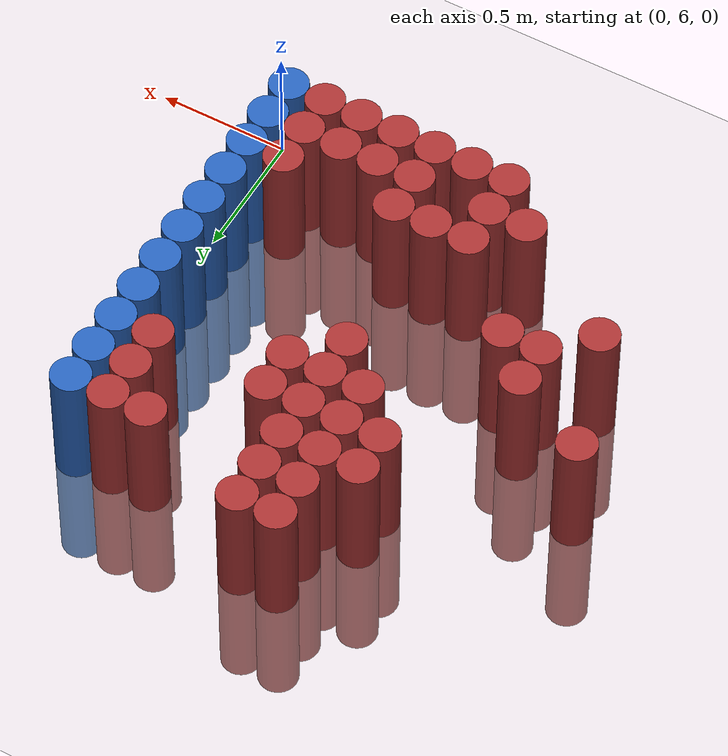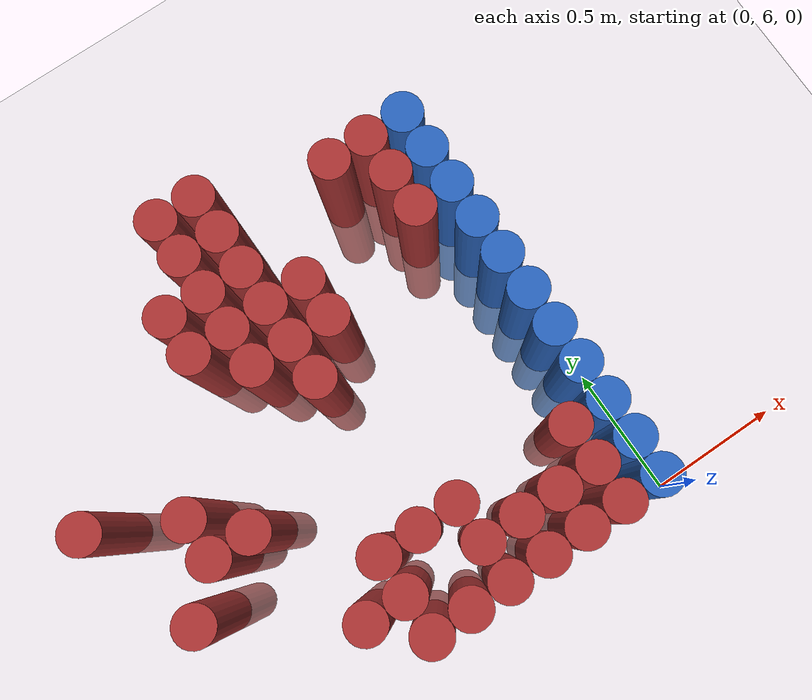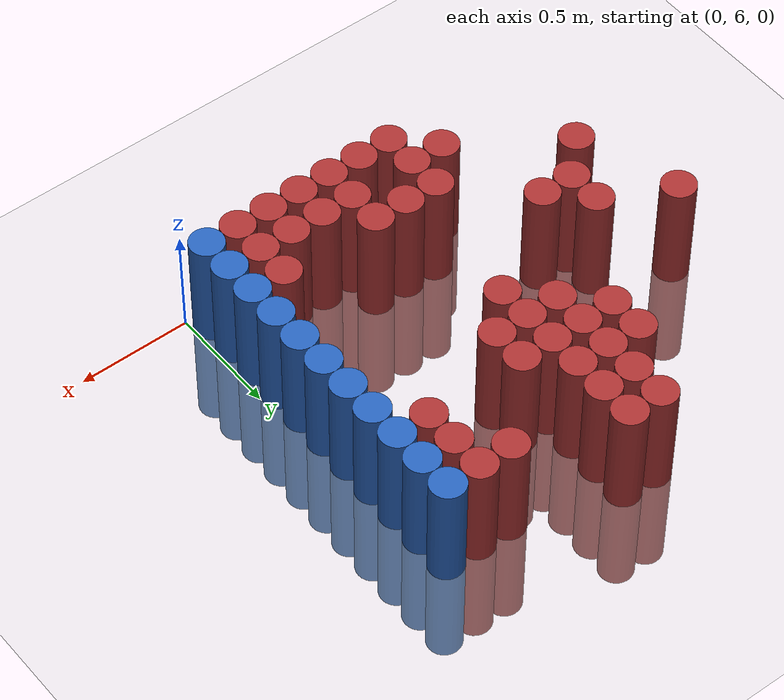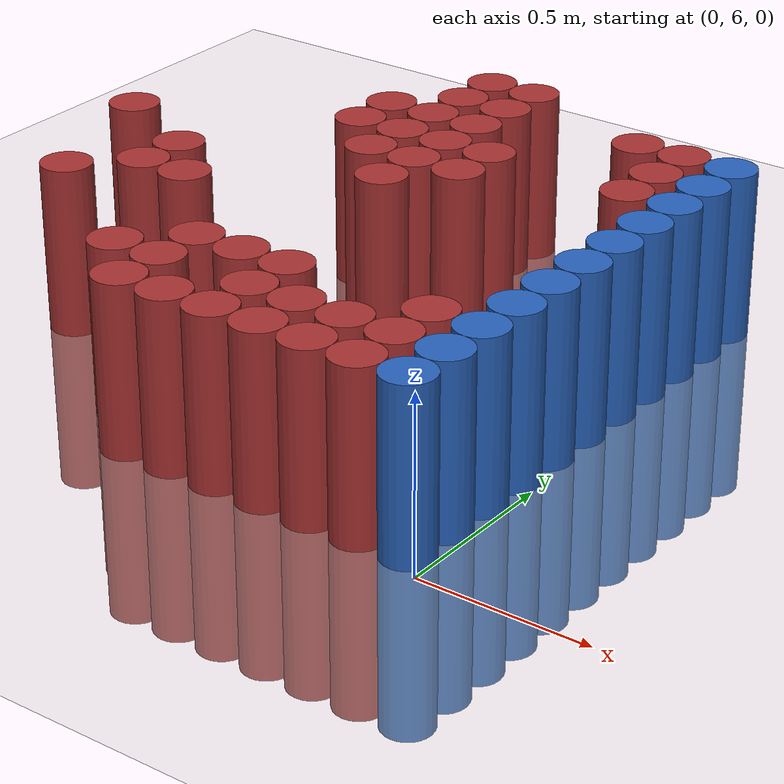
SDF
<sdf version="1.6">
 <world name="default">
  <model name="ground_plane">
   <static>1</static>
   <link name="link">
    <collision name="collision">
     <geometry><plane><normal>0 0 1</normal><size>100 100</size></plane></geometry>
     <surface><friction><ode><mu>100</mu><mu2>50</mu2></ode></friction></surface>
    </collision>
    <visual name="visual">
     <cast_shadows>0</cast_shadows>
     <geometry><plane><normal>0 0 1</normal><size>100 100</size></plane></geometry>
     <material>
      <script><uri>file://media/materials/scripts/gazebo.material</uri><name>Gazebo/Grey</name></script>
     </material>
    </visual>
   </link>
  </model>
  <model name="unit_cylinder_239">
   <static>1</static>
   <pose>-1.725000 6.975000 0.000000 0.000000 0.000000 0.000000</pose>
   <link name="link">
    <inertial>
     <mass>1</mass>
     <inertia><ixx>0.145833</ixx><ixy>0</ixy><ixz>0</ixz><iyy>0.145833</iyy><iyz>0</iyz><izz>0.125</izz></inertia>
    </inertial>
    <collision name="collision">
     <geometry><cylinder><radius>0.075000</radius><length>1</length></cylinder></geometry>
    </collision>
    <visual name="visual">
     <geometry><cylinder><radius>0.075000</radius><length>1</length></cylinder></geometry>
     <material>
      <ambient>0.648000 0.192000 0.192000 1</ambient>
      <diffuse>0.648000 0.192000 0.192000 1</diffuse>
     </material>
     <material>
      <script><name>Gazebo/Grey</name><uri>file://media/materials/scripts/gazebo.material</uri></script>
     </material>
    </visual>
   </link>
  </model>
  <model name="unit_cylinder_245">
   <static>1</static>
   <pose>-1.575000 6.525000 0.000000 0.000000 0.000000 0.000000</pose>
   <link name="link">
    <inertial>
     <mass>1</mass>
     <inertia><ixx>0.145833</ixx><ixy>0</ixy><ixz>0</ixz><iyy>0.145833</iyy><iyz>0</iyz><izz>0.125</izz></inertia>
    </inertial>
    <collision name="collision">
     <geometry><cylinder><radius>0.075000</radius><length>1</length></cylinder></geometry>
    </collision>
    <visual name="visual">
     <geometry><cylinder><radius>0.075000</radius><length>1</length></cylinder></geometry>
     <material>
      <ambient>0.648000 0.192000 0.192000 1</ambient>
      <diffuse>0.648000 0.192000 0.192000 1</diffuse>
     </material>
     <material>
      <script><name>Gazebo/Grey</name><uri>file://media/materials/scripts/gazebo.material</uri></script>
     </material>
    </visual>
   </link>
  </model>
  <model name="unit_cylinder_250">
   <static>1</static>
   <pose>-1.425000 6.675000 0.000000 0.000000 0.000000 0.000000</pose>
   <link name="link">
    <inertial>
     <mass>1</mass>
     <inertia><ixx>0.145833</ixx><ixy>0</ixy><ixz>0</ixz><iyy>0.145833</iyy><iyz>0</iyz><izz>0.125</izz></inertia>
    </inertial>
    <collision name="collision">
     <geometry><cylinder><radius>0.075000</radius><length>1</length></cylinder></geometry>
    </collision>
    <visual name="visual">
     <geometry><cylinder><radius>0.075000</radius><length>1</length></cylinder></geometry>
     <material>
      <ambient>0.648000 0.192000 0.192000 1</ambient>
      <diffuse>0.648000 0.192000 0.192000 1</diffuse>
     </material>
     <material>
      <script><name>Gazebo/Grey</name><uri>file://media/materials/scripts/gazebo.material</uri></script>
     </material>
    </visual>
   </link>
  </model>
  <model name="unit_cylinder_251">
   <static>1</static>
   <pose>-1.425000 6.825000 0.000000 0.000000 0.000000 0.000000</pose>
   <link name="link">
    <inertial>
     <mass>1</mass>
     <inertia><ixx>0.145833</ixx><ixy>0</ixy><ixz>0</ixz><iyy>0.145833</iyy><iyz>0</iyz><izz>0.125</izz></inertia>
    </inertial>
    <collision name="collision">
     <geometry><cylinder><radius>0.075000</radius><length>1</length></cylinder></geometry>
    </collision>
    <visual name="visual">
     <geometry><cylinder><radius>0.075000</radius><length>1</length></cylinder></geometry>
     <material>
      <ambient>0.648000 0.192000 0.192000 1</ambient>
      <diffuse>0.648000 0.192000 0.192000 1</diffuse>
     </material>
     <material>
      <script><name>Gazebo/Grey</name><uri>file://media/materials/scripts/gazebo.material</uri></script>
     </material>
    </visual>
   </link>
  </model>
  <model name="unit_cylinder_255">
   <static>1</static>
   <pose>-1.275000 6.675000 0.000000 0.000000 0.000000 0.000000</pose>
   <link name="link">
    <inertial>
     <mass>1</mass>
     <inertia><ixx>0.145833</ixx><ixy>0</ixy><ixz>0</ixz><iyy>0.145833</iyy><iyz>0</iyz><izz>0.125</izz></inertia>
    </inertial>
    <collision name="collision">
     <geometry><cylinder><radius>0.075000</radius><length>1</length></cylinder></geometry>
    </collision>
    <visual name="visual">
     <geometry><cylinder><radius>0.075000</radius><length>1</length></cylinder></geometry>
     <material>
      <ambient>0.648000 0.192000 0.192000 1</ambient>
      <diffuse>0.648000 0.192000 0.192000 1</diffuse>
     </material>
     <material>
      <script><name>Gazebo/Grey</name><uri>file://media/materials/scripts/gazebo.material</uri></script>
     </material>
    </visual>
   </link>
  </model>
  <model name="unit_cylinder_261">
   <static>1</static>
   <pose>-1.125000 6.225000 0.000000 0.000000 0.000000 0.000000</pose>
   <link name="link">
    <inertial>
     <mass>1</mass>
     <inertia><ixx>0.145833</ixx><ixy>0</ixy><ixz>0</ixz><iyy>0.145833</iyy><iyz>0</iyz><izz>0.125</izz></inertia>
    </inertial>
    <collision name="collision">
     <geometry><cylinder><radius>0.075000</radius><length>1</length></cylinder></geometry>
    </collision>
    <visual name="visual">
     <geometry><cylinder><radius>0.075000</radius><length>1</length></cylinder></geometry>
     <material>
      <ambient>0.648000 0.192000 0.192000 1</ambient>
      <diffuse>0.648000 0.192000 0.192000 1</diffuse>
     </material>
     <material>
      <script><name>Gazebo/Grey</name><uri>file://media/materials/scripts/gazebo.material</uri></script>
     </material>
    </visual>
   </link>
  </model>
  <model name="unit_cylinder_262">
   <static>1</static>
   <pose>-1.125000 7.275000 0.000000 0.000000 0.000000 0.000000</pose>
   <link name="link">
    <inertial>
     <mass>1</mass>
     <inertia><ixx>0.145833</ixx><ixy>0</ixy><ixz>0</ixz><iyy>0.145833</iyy><iyz>0</iyz><izz>0.125</izz></inertia>
    </inertial>
    <collision name="collision">
     <geometry><cylinder><radius>0.075000</radius><length>1</length></cylinder></geometry>
    </collision>
    <visual name="visual">
     <geometry><cylinder><radius>0.075000</radius><length>1</length></cylinder></geometry>
     <material>
      <ambient>0.648000 0.192000 0.192000 1</ambient>
      <diffuse>0.648000 0.192000 0.192000 1</diffuse>
     </material>
     <material>
      <script><name>Gazebo/Grey</name><uri>file://media/materials/scripts/gazebo.material</uri></script>
     </material>
    </visual>
   </link>
  </model>
  <model name="unit_cylinder_263">
   <static>1</static>
   <pose>-1.125000 7.425000 0.000000 0.000000 0.000000 0.000000</pose>
   <link name="link">
    <inertial>
     <mass>1</mass>
     <inertia><ixx>0.145833</ixx><ixy>0</ixy><ixz>0</ixz><iyy>0.145833</iyy><iyz>0</iyz><izz>0.125</izz></inertia>
    </inertial>
    <collision name="collision">
     <geometry><cylinder><radius>0.075000</radius><length>1</length></cylinder></geometry>
    </collision>
    <visual name="visual">
     <geometry><cylinder><radius>0.075000</radius><length>1</length></cylinder></geometry>
     <material>
      <ambient>0.648000 0.192000 0.192000 1</ambient>
      <diffuse>0.648000 0.192000 0.192000 1</diffuse>
     </material>
     <material>
      <script><name>Gazebo/Grey</name><uri>file://media/materials/scripts/gazebo.material</uri></script>
     </material>
    </visual>
   </link>
  </model>
  <model name="unit_cylinder_266">
   <static>1</static>
   <pose>-0.975000 6.075000 0.000000 0.000000 0.000000 0.000000</pose>
   <link name="link">
    <inertial>
     <mass>1</mass>
     <inertia><ixx>0.145833</ixx><ixy>0</ixy><ixz>0</ixz><iyy>0.145833</iyy><iyz>0</iyz><izz>0.125</izz></inertia>
    </inertial>
    <collision name="collision">
     <geometry><cylinder><radius>0.075000</radius><length>1</length></cylinder></geometry>
    </collision>
    <visual name="visual">
     <geometry><cylinder><radius>0.075000</radius><length>1</length></cylinder></geometry>
     <material>
      <ambient>0.648000 0.192000 0.192000 1</ambient>
      <diffuse>0.648000 0.192000 0.192000 1</diffuse>
     </material>
     <material>
      <script><name>Gazebo/Grey</name><uri>file://media/materials/scripts/gazebo.material</uri></script>
     </material>
    </visual>
   </link>
  </model>
  <model name="unit_cylinder_267">
   <static>1</static>
   <pose>-0.975000 6.225000 0.000000 0.000000 0.000000 0.000000</pose>
   <link name="link">
    <inertial>
     <mass>1</mass>
     <inertia><ixx>0.145833</ixx><ixy>0</ixy><ixz>0</ixz><iyy>0.145833</iyy><iyz>0</iyz><izz>0.125</izz></inertia>
    </inertial>
    <collision name="collision">
     <geometry><cylinder><radius>0.075000</radius><length>1</length></cylinder></geometry>
    </collision>
    <visual name="visual">
     <geometry><cylinder><radius>0.075000</radius><length>1</length></cylinder></geometry>
     <material>
      <ambient>0.648000 0.192000 0.192000 1</ambient>
      <diffuse>0.648000 0.192000 0.192000 1</diffuse>
     </material>
     <material>
      <script><name>Gazebo/Grey</name><uri>file://media/materials/scripts/gazebo.material</uri></script>
     </material>
    </visual>
   </link>
  </model>
  <model name="unit_cylinder_268">
   <static>1</static>
   <pose>-0.975000 6.375000 0.000000 0.000000 0.000000 0.000000</pose>
   <link name="link">
    <inertial>
     <mass>1</mass>
     <inertia><ixx>0.145833</ixx><ixy>0</ixy><ixz>0</ixz><iyy>0.145833</iyy><iyz>0</iyz><izz>0.125</izz></inertia>
    </inertial>
    <collision name="collision">
     <geometry><cylinder><radius>0.075000</radius><length>1</length></cylinder></geometry>
    </collision>
    <visual name="visual">
     <geometry><cylinder><radius>0.075000</radius><length>1</length></cylinder></geometry>
     <material>
      <ambient>0.648000 0.192000 0.192000 1</ambient>
      <diffuse>0.648000 0.192000 0.192000 1</diffuse>
     </material>
     <material>
      <script><name>Gazebo/Grey</name><uri>file://media/materials/scripts/gazebo.material</uri></script>
     </material>
    </visual>
   </link>
  </model>
  <model name="unit_cylinder_269">
   <static>1</static>
   <pose>-0.975000 7.125000 0.000000 0.000000 0.000000 0.000000</pose>
   <link name="link">
    <inertial>
     <mass>1</mass>
     <inertia><ixx>0.145833</ixx><ixy>0</ixy><ixz>0</ixz><iyy>0.145833</iyy><iyz>0</iyz><izz>0.125</izz></inertia>
    </inertial>
    <collision name="collision">
     <geometry><cylinder><radius>0.075000</radius><length>1</length></cylinder></geometry>
    </collision>
    <visual name="visual">
     <geometry><cylinder><radius>0.075000</radius><length>1</length></cylinder></geometry>
     <material>
      <ambient>0.648000 0.192000 0.192000 1</ambient>
      <diffuse>0.648000 0.192000 0.192000 1</diffuse>
     </material>
     <material>
      <script><name>Gazebo/Grey</name><uri>file://media/materials/scripts/gazebo.material</uri></script>
     </material>
    </visual>
   </link>
  </model>
  <model name="unit_cylinder_270">
   <static>1</static>
   <pose>-0.975000 7.275000 0.000000 0.000000 0.000000 0.000000</pose>
   <link name="link">
    <inertial>
     <mass>1</mass>
     <inertia><ixx>0.145833</ixx><ixy>0</ixy><ixz>0</ixz><iyy>0.145833</iyy><iyz>0</iyz><izz>0.125</izz></inertia>
    </inertial>
    <collision name="collision">
     <geometry><cylinder><radius>0.075000</radius><length>1</length></cylinder></geometry>
    </collision>
    <visual name="visual">
     <geometry><cylinder><radius>0.075000</radius><length>1</length></cylinder></geometry>
     <material>
      <ambient>0.648000 0.192000 0.192000 1</ambient>
      <diffuse>0.648000 0.192000 0.192000 1</diffuse>
     </material>
     <material>
      <script><name>Gazebo/Grey</name><uri>file://media/materials/scripts/gazebo.material</uri></script>
     </material>
    </visual>
   </link>
  </model>
  <model name="unit_cylinder_271">
   <static>1</static>
   <pose>-0.975000 7.425000 0.000000 0.000000 0.000000 0.000000</pose>
   <link name="link">
    <inertial>
     <mass>1</mass>
     <inertia><ixx>0.145833</ixx><ixy>0</ixy><ixz>0</ixz><iyy>0.145833</iyy><iyz>0</iyz><izz>0.125</izz></inertia>
    </inertial>
    <collision name="collision">
     <geometry><cylinder><radius>0.075000</radius><length>1</length></cylinder></geometry>
    </collision>
    <visual name="visual">
     <geometry><cylinder><radius>0.075000</radius><length>1</length></cylinder></geometry>
     <material>
      <ambient>0.648000 0.192000 0.192000 1</ambient>
      <diffuse>0.648000 0.192000 0.192000 1</diffuse>
     </material>
     <material>
      <script><name>Gazebo/Grey</name><uri>file://media/materials/scripts/gazebo.material</uri></script>
     </material>
    </visual>
   </link>
  </model>
  <model name="unit_cylinder_272">
   <static>1</static>
   <pose>-0.975000 7.575000 0.000000 0.000000 0.000000 0.000000</pose>
   <link name="link">
    <inertial>
     <mass>1</mass>
     <inertia><ixx>0.145833</ixx><ixy>0</ixy><ixz>0</ixz><iyy>0.145833</iyy><iyz>0</iyz><izz>0.125</izz></inertia>
    </inertial>
    <collision name="collision">
     <geometry><cylinder><radius>0.075000</radius><length>1</length></cylinder></geometry>
    </collision>
    <visual name="visual">
     <geometry><cylinder><radius>0.075000</radius><length>1</length></cylinder></geometry>
     <material>
      <ambient>0.648000 0.192000 0.192000 1</ambient>
      <diffuse>0.648000 0.192000 0.192000 1</diffuse>
     </material>
     <material>
      <script><name>Gazebo/Grey</name><uri>file://media/materials/scripts/gazebo.material</uri></script>
     </material>
    </visual>
   </link>
  </model>
  <model name="unit_cylinder_273">
   <static>1</static>
   <pose>-0.975000 7.725000 0.000000 0.000000 0.000000 0.000000</pose>
   <link name="link">
    <inertial>
     <mass>1</mass>
     <inertia><ixx>0.145833</ixx><ixy>0</ixy><ixz>0</ixz><iyy>0.145833</iyy><iyz>0</iyz><izz>0.125</izz></inertia>
    </inertial>
    <collision name="collision">
     <geometry><cylinder><radius>0.075000</radius><length>1</length></cylinder></geometry>
    </collision>
    <visual name="visual">
     <geometry><cylinder><radius>0.075000</radius><length>1</length></cylinder></geometry>
     <material>
      <ambient>0.648000 0.192000 0.192000 1</ambient>
      <diffuse>0.648000 0.192000 0.192000 1</diffuse>
     </material>
     <material>
      <script><name>Gazebo/Grey</name><uri>file://media/materials/scripts/gazebo.material</uri></script>
     </material>
    </visual>
   </link>
  </model>
  <model name="unit_cylinder_279">
   <static>1</static>
   <pose>-0.825000 6.075000 0.000000 0.000000 0.000000 0.000000</pose>
   <link name="link">
    <inertial>
     <mass>1</mass>
     <inertia><ixx>0.145833</ixx><ixy>0</ixy><ixz>0</ixz><iyy>0.145833</iyy><iyz>0</iyz><izz>0.125</izz></inertia>
    </inertial>
    <collision name="collision">
     <geometry><cylinder><radius>0.075000</radius><length>1</length></cylinder></geometry>
    </collision>
    <visual name="visual">
     <geometry><cylinder><radius>0.075000</radius><length>1</length></cylinder></geometry>
     <material>
      <ambient>0.648000 0.192000 0.192000 1</ambient>
      <diffuse>0.648000 0.192000 0.192000 1</diffuse>
     </material>
     <material>
      <script><name>Gazebo/Grey</name><uri>file://media/materials/scripts/gazebo.material</uri></script>
     </material>
    </visual>
   </link>
  </model>
  <model name="unit_cylinder_280">
   <static>1</static>
   <pose>-0.825000 6.375000 0.000000 0.000000 0.000000 0.000000</pose>
   <link name="link">
    <inertial>
     <mass>1</mass>
     <inertia><ixx>0.145833</ixx><ixy>0</ixy><ixz>0</ixz><iyy>0.145833</iyy><iyz>0</iyz><izz>0.125</izz></inertia>
    </inertial>
    <collision name="collision">
     <geometry><cylinder><radius>0.075000</radius><length>1</length></cylinder></geometry>
    </collision>
    <visual name="visual">
     <geometry><cylinder><radius>0.075000</radius><length>1</length></cylinder></geometry>
     <material>
      <ambient>0.648000 0.192000 0.192000 1</ambient>
      <diffuse>0.648000 0.192000 0.192000 1</diffuse>
     </material>
     <material>
      <script><name>Gazebo/Grey</name><uri>file://media/materials/scripts/gazebo.material</uri></script>
     </material>
    </visual>
   </link>
  </model>
  <model name="unit_cylinder_281">
   <static>1</static>
   <pose>-0.825000 6.975000 0.000000 0.000000 0.000000 0.000000</pose>
   <link name="link">
    <inertial>
     <mass>1</mass>
     <inertia><ixx>0.145833</ixx><ixy>0</ixy><ixz>0</ixz><iyy>0.145833</iyy><iyz>0</iyz><izz>0.125</izz></inertia>
    </inertial>
    <collision name="collision">
     <geometry><cylinder><radius>0.075000</radius><length>1</length></cylinder></geometry>
    </collision>
    <visual name="visual">
     <geometry><cylinder><radius>0.075000</radius><length>1</length></cylinder></geometry>
     <material>
      <ambient>0.648000 0.192000 0.192000 1</ambient>
      <diffuse>0.648000 0.192000 0.192000 1</diffuse>
     </material>
     <material>
      <script><name>Gazebo/Grey</name><uri>file://media/materials/scripts/gazebo.material</uri></script>
     </material>
    </visual>
   </link>
  </model>
  <model name="unit_cylinder_282">
   <static>1</static>
   <pose>-0.825000 7.125000 0.000000 0.000000 0.000000 0.000000</pose>
   <link name="link">
    <inertial>
     <mass>1</mass>
     <inertia><ixx>0.145833</ixx><ixy>0</ixy><ixz>0</ixz><iyy>0.145833</iyy><iyz>0</iyz><izz>0.125</izz></inertia>
    </inertial>
    <collision name="collision">
     <geometry><cylinder><radius>0.075000</radius><length>1</length></cylinder></geometry>
    </collision>
    <visual name="visual">
     <geometry><cylinder><radius>0.075000</radius><length>1</length></cylinder></geometry>
     <material>
      <ambient>0.648000 0.192000 0.192000 1</ambient>
      <diffuse>0.648000 0.192000 0.192000 1</diffuse>
     </material>
     <material>
      <script><name>Gazebo/Grey</name><uri>file://media/materials/scripts/gazebo.material</uri></script>
     </material>
    </visual>
   </link>
  </model>
  <model name="unit_cylinder_283">
   <static>1</static>
   <pose>-0.825000 7.275000 0.000000 0.000000 0.000000 0.000000</pose>
   <link name="link">
    <inertial>
     <mass>1</mass>
     <inertia><ixx>0.145833</ixx><ixy>0</ixy><ixz>0</ixz><iyy>0.145833</iyy><iyz>0</iyz><izz>0.125</izz></inertia>
    </inertial>
    <collision name="collision">
     <geometry><cylinder><radius>0.075000</radius><length>1</length></cylinder></geometry>
    </collision>
    <visual name="visual">
     <geometry><cylinder><radius>0.075000</radius><length>1</length></cylinder></geometry>
     <material>
      <ambient>0.648000 0.192000 0.192000 1</ambient>
      <diffuse>0.648000 0.192000 0.192000 1</diffuse>
     </material>
     <material>
      <script><name>Gazebo/Grey</name><uri>file://media/materials/scripts/gazebo.material</uri></script>
     </material>
    </visual>
   </link>
  </model>
  <model name="unit_cylinder_284">
   <static>1</static>
   <pose>-0.825000 7.425000 0.000000 0.000000 0.000000 0.000000</pose>
   <link name="link">
    <inertial>
     <mass>1</mass>
     <inertia><ixx>0.145833</ixx><ixy>0</ixy><ixz>0</ixz><iyy>0.145833</iyy><iyz>0</iyz><izz>0.125</izz></inertia>
    </inertial>
    <collision name="collision">
     <geometry><cylinder><radius>0.075000</radius><length>1</length></cylinder></geometry>
    </collision>
    <visual name="visual">
     <geometry><cylinder><radius>0.075000</radius><length>1</length></cylinder></geometry>
     <material>
      <ambient>0.648000 0.192000 0.192000 1</ambient>
      <diffuse>0.648000 0.192000 0.192000 1</diffuse>
     </material>
     <material>
      <script><name>Gazebo/Grey</name><uri>file://media/materials/scripts/gazebo.material</uri></script>
     </material>
    </visual>
   </link>
  </model>
  <model name="unit_cylinder_285">
   <static>1</static>
   <pose>-0.825000 7.575000 0.000000 0.000000 0.000000 0.000000</pose>
   <link name="link">
    <inertial>
     <mass>1</mass>
     <inertia><ixx>0.145833</ixx><ixy>0</ixy><ixz>0</ixz><iyy>0.145833</iyy><iyz>0</iyz><izz>0.125</izz></inertia>
    </inertial>
    <collision name="collision">
     <geometry><cylinder><radius>0.075000</radius><length>1</length></cylinder></geometry>
    </collision>
    <visual name="visual">
     <geometry><cylinder><radius>0.075000</radius><length>1</length></cylinder></geometry>
     <material>
      <ambient>0.648000 0.192000 0.192000 1</ambient>
      <diffuse>0.648000 0.192000 0.192000 1</diffuse>
     </material>
     <material>
      <script><name>Gazebo/Grey</name><uri>file://media/materials/scripts/gazebo.material</uri></script>
     </material>
    </visual>
   </link>
  </model>
  <model name="unit_cylinder_286">
   <static>1</static>
   <pose>-0.825000 7.725000 0.000000 0.000000 0.000000 0.000000</pose>
   <link name="link">
    <inertial>
     <mass>1</mass>
     <inertia><ixx>0.145833</ixx><ixy>0</ixy><ixz>0</ixz><iyy>0.145833</iyy><iyz>0</iyz><izz>0.125</izz></inertia>
    </inertial>
    <collision name="collision">
     <geometry><cylinder><radius>0.075000</radius><length>1</length></cylinder></geometry>
    </collision>
    <visual name="visual">
     <geometry><cylinder><radius>0.075000</radius><length>1</length></cylinder></geometry>
     <material>
      <ambient>0.648000 0.192000 0.192000 1</ambient>
      <diffuse>0.648000 0.192000 0.192000 1</diffuse>
     </material>
     <material>
      <script><name>Gazebo/Grey</name><uri>file://media/materials/scripts/gazebo.material</uri></script>
     </material>
    </visual>
   </link>
  </model>
  <model name="unit_cylinder_293">
   <static>1</static>
   <pose>-0.675000 6.075000 0.000000 0.000000 0.000000 0.000000</pose>
   <link name="link">
    <inertial>
     <mass>1</mass>
     <inertia><ixx>0.145833</ixx><ixy>0</ixy><ixz>0</ixz><iyy>0.145833</iyy><iyz>0</iyz><izz>0.125</izz></inertia>
    </inertial>
    <collision name="collision">
     <geometry><cylinder><radius>0.075000</radius><length>1</length></cylinder></geometry>
    </collision>
    <visual name="visual">
     <geometry><cylinder><radius>0.075000</radius><length>1</length></cylinder></geometry>
     <material>
      <ambient>0.648000 0.192000 0.192000 1</ambient>
      <diffuse>0.648000 0.192000 0.192000 1</diffuse>
     </material>
     <material>
      <script><name>Gazebo/Grey</name><uri>file://media/materials/scripts/gazebo.material</uri></script>
     </material>
    </visual>
   </link>
  </model>
  <model name="unit_cylinder_294">
   <static>1</static>
   <pose>-0.675000 6.225000 0.000000 0.000000 0.000000 0.000000</pose>
   <link name="link">
    <inertial>
     <mass>1</mass>
     <inertia><ixx>0.145833</ixx><ixy>0</ixy><ixz>0</ixz><iyy>0.145833</iyy><iyz>0</iyz><izz>0.125</izz></inertia>
    </inertial>
    <collision name="collision">
     <geometry><cylinder><radius>0.075000</radius><length>1</length></cylinder></geometry>
    </collision>
    <visual name="visual">
     <geometry><cylinder><radius>0.075000</radius><length>1</length></cylinder></geometry>
     <material>
      <ambient>0.648000 0.192000 0.192000 1</ambient>
      <diffuse>0.648000 0.192000 0.192000 1</diffuse>
     </material>
     <material>
      <script><name>Gazebo/Grey</name><uri>file://media/materials/scripts/gazebo.material</uri></script>
     </material>
    </visual>
   </link>
  </model>
  <model name="unit_cylinder_295">
   <static>1</static>
   <pose>-0.675000 6.375000 0.000000 0.000000 0.000000 0.000000</pose>
   <link name="link">
    <inertial>
     <mass>1</mass>
     <inertia><ixx>0.145833</ixx><ixy>0</ixy><ixz>0</ixz><iyy>0.145833</iyy><iyz>0</iyz><izz>0.125</izz></inertia>
    </inertial>
    <collision name="collision">
     <geometry><cylinder><radius>0.075000</radius><length>1</length></cylinder></geometry>
    </collision>
    <visual name="visual">
     <geometry><cylinder><radius>0.075000</radius><length>1</length></cylinder></geometry>
     <material>
      <ambient>0.648000 0.192000 0.192000 1</ambient>
      <diffuse>0.648000 0.192000 0.192000 1</diffuse>
     </material>
     <material>
      <script><name>Gazebo/Grey</name><uri>file://media/materials/scripts/gazebo.material</uri></script>
     </material>
    </visual>
   </link>
  </model>
  <model name="unit_cylinder_296">
   <static>1</static>
   <pose>-0.675000 7.125000 0.000000 0.000000 0.000000 0.000000</pose>
   <link name="link">
    <inertial>
     <mass>1</mass>
     <inertia><ixx>0.145833</ixx><ixy>0</ixy><ixz>0</ixz><iyy>0.145833</iyy><iyz>0</iyz><izz>0.125</izz></inertia>
    </inertial>
    <collision name="collision">
     <geometry><cylinder><radius>0.075000</radius><length>1</length></cylinder></geometry>
    </collision>
    <visual name="visual">
     <geometry><cylinder><radius>0.075000</radius><length>1</length></cylinder></geometry>
     <material>
      <ambient>0.648000 0.192000 0.192000 1</ambient>
      <diffuse>0.648000 0.192000 0.192000 1</diffuse>
     </material>
     <material>
      <script><name>Gazebo/Grey</name><uri>file://media/materials/scripts/gazebo.material</uri></script>
     </material>
    </visual>
   </link>
  </model>
  <model name="unit_cylinder_297">
   <static>1</static>
   <pose>-0.675000 7.275000 0.000000 0.000000 0.000000 0.000000</pose>
   <link name="link">
    <inertial>
     <mass>1</mass>
     <inertia><ixx>0.145833</ixx><ixy>0</ixy><ixz>0</ixz><iyy>0.145833</iyy><iyz>0</iyz><izz>0.125</izz></inertia>
    </inertial>
    <collision name="collision">
     <geometry><cylinder><radius>0.075000</radius><length>1</length></cylinder></geometry>
    </collision>
    <visual name="visual">
     <geometry><cylinder><radius>0.075000</radius><length>1</length></cylinder></geometry>
     <material>
      <ambient>0.648000 0.192000 0.192000 1</ambient>
      <diffuse>0.648000 0.192000 0.192000 1</diffuse>
     </material>
     <material>
      <script><name>Gazebo/Grey</name><uri>file://media/materials/scripts/gazebo.material</uri></script>
     </material>
    </visual>
   </link>
  </model>
  <model name="unit_cylinder_302">
   <static>1</static>
   <pose>-0.525000 6.075000 0.000000 0.000000 0.000000 0.000000</pose>
   <link name="link">
    <inertial>
     <mass>1</mass>
     <inertia><ixx>0.145833</ixx><ixy>0</ixy><ixz>0</ixz><iyy>0.145833</iyy><iyz>0</iyz><izz>0.125</izz></inertia>
    </inertial>
    <collision name="collision">
     <geometry><cylinder><radius>0.075000</radius><length>1</length></cylinder></geometry>
    </collision>
    <visual name="visual">
     <geometry><cylinder><radius>0.075000</radius><length>1</length></cylinder></geometry>
     <material>
      <ambient>0.648000 0.192000 0.192000 1</ambient>
      <diffuse>0.648000 0.192000 0.192000 1</diffuse>
     </material>
     <material>
      <script><name>Gazebo/Grey</name><uri>file://media/materials/scripts/gazebo.material</uri></script>
     </material>
    </visual>
   </link>
  </model>
  <model name="unit_cylinder_303">
   <static>1</static>
   <pose>-0.525000 6.225000 0.000000 0.000000 0.000000 0.000000</pose>
   <link name="link">
    <inertial>
     <mass>1</mass>
     <inertia><ixx>0.145833</ixx><ixy>0</ixy><ixz>0</ixz><iyy>0.145833</iyy><iyz>0</iyz><izz>0.125</izz></inertia>
    </inertial>
    <collision name="collision">
     <geometry><cylinder><radius>0.075000</radius><length>1</length></cylinder></geometry>
    </collision>
    <visual name="visual">
     <geometry><cylinder><radius>0.075000</radius><length>1</length></cylinder></geometry>
     <material>
      <ambient>0.648000 0.192000 0.192000 1</ambient>
      <diffuse>0.648000 0.192000 0.192000 1</diffuse>
     </material>
     <material>
      <script><name>Gazebo/Grey</name><uri>file://media/materials/scripts/gazebo.material</uri></script>
     </material>
    </visual>
   </link>
  </model>
  <model name="unit_cylinder_310">
   <static>1</static>
   <pose>-0.375000 6.075000 0.000000 0.000000 0.000000 0.000000</pose>
   <link name="link">
    <inertial>
     <mass>1</mass>
     <inertia><ixx>0.145833</ixx><ixy>0</ixy><ixz>0</ixz><iyy>0.145833</iyy><iyz>0</iyz><izz>0.125</izz></inertia>
    </inertial>
    <collision name="collision">
     <geometry><cylinder><radius>0.075000</radius><length>1</length></cylinder></geometry>
    </collision>
    <visual name="visual">
     <geometry><cylinder><radius>0.075000</radius><length>1</length></cylinder></geometry>
     <material>
      <ambient>0.648000 0.192000 0.192000 1</ambient>
      <diffuse>0.648000 0.192000 0.192000 1</diffuse>
     </material>
     <material>
      <script><name>Gazebo/Grey</name><uri>file://media/materials/scripts/gazebo.material</uri></script>
     </material>
    </visual>
   </link>
  </model>
  <model name="unit_cylinder_311">
   <static>1</static>
   <pose>-0.375000 6.225000 0.000000 0.000000 0.000000 0.000000</pose>
   <link name="link">
    <inertial>
     <mass>1</mass>
     <inertia><ixx>0.145833</ixx><ixy>0</ixy><ixz>0</ixz><iyy>0.145833</iyy><iyz>0</iyz><izz>0.125</izz></inertia>
    </inertial>
    <collision name="collision">
     <geometry><cylinder><radius>0.075000</radius><length>1</length></cylinder></geometry>
    </collision>
    <visual name="visual">
     <geometry><cylinder><radius>0.075000</radius><length>1</length></cylinder></geometry>
     <material>
      <ambient>0.648000 0.192000 0.192000 1</ambient>
      <diffuse>0.648000 0.192000 0.192000 1</diffuse>
     </material>
     <material>
      <script><name>Gazebo/Grey</name><uri>file://media/materials/scripts/gazebo.material</uri></script>
     </material>
    </visual>
   </link>
  </model>
  <model name="unit_cylinder_312">
   <static>1</static>
   <pose>-0.375000 7.575000 0.000000 0.000000 0.000000 0.000000</pose>
   <link name="link">
    <inertial>
     <mass>1</mass>
     <inertia><ixx>0.145833</ixx><ixy>0</ixy><ixz>0</ixz><iyy>0.145833</iyy><iyz>0</iyz><izz>0.125</izz></inertia>
    </inertial>
    <collision name="collision">
     <geometry><cylinder><radius>0.075000</radius><length>1</length></cylinder></geometry>
    </collision>
    <visual name="visual">
     <geometry><cylinder><radius>0.075000</radius><length>1</length></cylinder></geometry>
     <material>
      <ambient>0.648000 0.192000 0.192000 1</ambient>
      <diffuse>0.648000 0.192000 0.192000 1</diffuse>
     </material>
     <material>
      <script><name>Gazebo/Grey</name><uri>file://media/materials/scripts/gazebo.material</uri></script>
     </material>
    </visual>
   </link>
  </model>
  <model name="unit_cylinder_317">
   <static>1</static>
   <pose>-0.225000 6.075000 0.000000 0.000000 0.000000 0.000000</pose>
   <link name="link">
    <inertial>
     <mass>1</mass>
     <inertia><ixx>0.145833</ixx><ixy>0</ixy><ixz>0</ixz><iyy>0.145833</iyy><iyz>0</iyz><izz>0.125</izz></inertia>
    </inertial>
    <collision name="collision">
     <geometry><cylinder><radius>0.075000</radius><length>1</length></cylinder></geometry>
    </collision>
    <visual name="visual">
     <geometry><cylinder><radius>0.075000</radius><length>1</length></cylinder></geometry>
     <material>
      <ambient>0.648000 0.192000 0.192000 1</ambient>
      <diffuse>0.648000 0.192000 0.192000 1</diffuse>
     </material>
     <material>
      <script><name>Gazebo/Grey</name><uri>file://media/materials/scripts/gazebo.material</uri></script>
     </material>
    </visual>
   </link>
  </model>
  <model name="unit_cylinder_318">
   <static>1</static>
   <pose>-0.225000 6.225000 0.000000 0.000000 0.000000 0.000000</pose>
   <link name="link">
    <inertial>
     <mass>1</mass>
     <inertia><ixx>0.145833</ixx><ixy>0</ixy><ixz>0</ixz><iyy>0.145833</iyy><iyz>0</iyz><izz>0.125</izz></inertia>
    </inertial>
    <collision name="collision">
     <geometry><cylinder><radius>0.075000</radius><length>1</length></cylinder></geometry>
    </collision>
    <visual name="visual">
     <geometry><cylinder><radius>0.075000</radius><length>1</length></cylinder></geometry>
     <material>
      <ambient>0.648000 0.192000 0.192000 1</ambient>
      <diffuse>0.648000 0.192000 0.192000 1</diffuse>
     </material>
     <material>
      <script><name>Gazebo/Grey</name><uri>file://media/materials/scripts/gazebo.material</uri></script>
     </material>
    </visual>
   </link>
  </model>
  <model name="unit_cylinder_319">
   <static>1</static>
   <pose>-0.225000 6.375000 0.000000 0.000000 0.000000 0.000000</pose>
   <link name="link">
    <inertial>
     <mass>1</mass>
     <inertia><ixx>0.145833</ixx><ixy>0</ixy><ixz>0</ixz><iyy>0.145833</iyy><iyz>0</iyz><izz>0.125</izz></inertia>
    </inertial>
    <collision name="collision">
     <geometry><cylinder><radius>0.075000</radius><length>1</length></cylinder></geometry>
    </collision>
    <visual name="visual">
     <geometry><cylinder><radius>0.075000</radius><length>1</length></cylinder></geometry>
     <material>
      <ambient>0.648000 0.192000 0.192000 1</ambient>
      <diffuse>0.648000 0.192000 0.192000 1</diffuse>
     </material>
     <material>
      <script><name>Gazebo/Grey</name><uri>file://media/materials/scripts/gazebo.material</uri></script>
     </material>
    </visual>
   </link>
  </model>
  <model name="unit_cylinder_320">
   <static>1</static>
   <pose>-0.225000 7.275000 0.000000 0.000000 0.000000 0.000000</pose>
   <link name="link">
    <inertial>
     <mass>1</mass>
     <inertia><ixx>0.145833</ixx><ixy>0</ixy><ixz>0</ixz><iyy>0.145833</iyy><iyz>0</iyz><izz>0.125</izz></inertia>
    </inertial>
    <collision name="collision">
     <geometry><cylinder><radius>0.075000</radius><length>1</length></cylinder></geometry>
    </collision>
    <visual name="visual">
     <geometry><cylinder><radius>0.075000</radius><length>1</length></cylinder></geometry>
     <material>
      <ambient>0.648000 0.192000 0.192000 1</ambient>
      <diffuse>0.648000 0.192000 0.192000 1</diffuse>
     </material>
     <material>
      <script><name>Gazebo/Grey</name><uri>file://media/materials/scripts/gazebo.material</uri></script>
     </material>
    </visual>
   </link>
  </model>
  <model name="unit_cylinder_321">
   <static>1</static>
   <pose>-0.225000 7.425000 0.000000 0.000000 0.000000 0.000000</pose>
   <link name="link">
    <inertial>
     <mass>1</mass>
     <inertia><ixx>0.145833</ixx><ixy>0</ixy><ixz>0</ixz><iyy>0.145833</iyy><iyz>0</iyz><izz>0.125</izz></inertia>
    </inertial>
    <collision name="collision">
     <geometry><cylinder><radius>0.075000</radius><length>1</length></cylinder></geometry>
    </collision>
    <visual name="visual">
     <geometry><cylinder><radius>0.075000</radius><length>1</length></cylinder></geometry>
     <material>
      <ambient>0.648000 0.192000 0.192000 1</ambient>
      <diffuse>0.648000 0.192000 0.192000 1</diffuse>
     </material>
     <material>
      <script><name>Gazebo/Grey</name><uri>file://media/materials/scripts/gazebo.material</uri></script>
     </material>
    </visual>
   </link>
  </model>
  <model name="unit_cylinder_322">
   <static>1</static>
   <pose>-0.225000 7.575000 0.000000 0.000000 0.000000 0.000000</pose>
   <link name="link">
    <inertial>
     <mass>1</mass>
     <inertia><ixx>0.145833</ixx><ixy>0</ixy><ixz>0</ixz><iyy>0.145833</iyy><iyz>0</iyz><izz>0.125</izz></inertia>
    </inertial>
    <collision name="collision">
     <geometry><cylinder><radius>0.075000</radius><length>1</length></cylinder></geometry>
    </collision>
    <visual name="visual">
     <geometry><cylinder><radius>0.075000</radius><length>1</length></cylinder></geometry>
     <material>
      <ambient>0.648000 0.192000 0.192000 1</ambient>
      <diffuse>0.648000 0.192000 0.192000 1</diffuse>
     </material>
     <material>
      <script><name>Gazebo/Grey</name><uri>file://media/materials/scripts/gazebo.material</uri></script>
     </material>
    </visual>
   </link>
  </model>
  <model name="unit_cylinder_335">
   <static>1</static>
   <pose>-0.075000 6.075000 0.000000 0.000000 0.000000 0.000000</pose>
   <link name="link">
    <inertial>
     <mass>1</mass>
     <inertia><ixx>0.145833</ixx><ixy>0</ixy><ixz>0</ixz><iyy>0.145833</iyy><iyz>0</iyz><izz>0.125</izz></inertia>
    </inertial>
    <collision name="collision">
     <geometry><cylinder><radius>0.075000</radius><length>1</length></cylinder></geometry>
    </collision>
    <visual name="visual">
     <geometry><cylinder><radius>0.075000</radius><length>1</length></cylinder></geometry>
     <material>
      <ambient>0.152000 0.379000 0.720000 1</ambient>
      <diffuse>0.152000 0.379000 0.720000 1</diffuse>
     </material>
     <material>
      <script><name>Gazebo/Grey</name><uri>file://media/materials/scripts/gazebo.material</uri></script>
     </material>
    </visual>
   </link>
  </model>
  <model name="unit_cylinder_336">
   <static>1</static>
   <pose>-0.075000 6.225000 0.000000 0.000000 0.000000 0.000000</pose>
   <link name="link">
    <inertial>
     <mass>1</mass>
     <inertia><ixx>0.145833</ixx><ixy>0</ixy><ixz>0</ixz><iyy>0.145833</iyy><iyz>0</iyz><izz>0.125</izz></inertia>
    </inertial>
    <collision name="collision">
     <geometry><cylinder><radius>0.075000</radius><length>1</length></cylinder></geometry>
    </collision>
    <visual name="visual">
     <geometry><cylinder><radius>0.075000</radius><length>1</length></cylinder></geometry>
     <material>
      <ambient>0.152000 0.379000 0.720000 1</ambient>
      <diffuse>0.152000 0.379000 0.720000 1</diffuse>
     </material>
     <material>
      <script><name>Gazebo/Grey</name><uri>file://media/materials/scripts/gazebo.material</uri></script>
     </material>
    </visual>
   </link>
  </model>
  <model name="unit_cylinder_337">
   <static>1</static>
   <pose>-0.075000 6.375000 0.000000 0.000000 0.000000 0.000000</pose>
   <link name="link">
    <inertial>
     <mass>1</mass>
     <inertia><ixx>0.145833</ixx><ixy>0</ixy><ixz>0</ixz><iyy>0.145833</iyy><iyz>0</iyz><izz>0.125</izz></inertia>
    </inertial>
    <collision name="collision">
     <geometry><cylinder><radius>0.075000</radius><length>1</length></cylinder></geometry>
    </collision>
    <visual name="visual">
     <geometry><cylinder><radius>0.075000</radius><length>1</length></cylinder></geometry>
     <material>
      <ambient>0.152000 0.379000 0.720000 1</ambient>
      <diffuse>0.152000 0.379000 0.720000 1</diffuse>
     </material>
     <material>
      <script><name>Gazebo/Grey</name><uri>file://media/materials/scripts/gazebo.material</uri></script>
     </material>
    </visual>
   </link>
  </model>
  <model name="unit_cylinder_338">
   <static>1</static>
   <pose>-0.075000 6.525000 0.000000 0.000000 0.000000 0.000000</pose>
   <link name="link">
    <inertial>
     <mass>1</mass>
     <inertia><ixx>0.145833</ixx><ixy>0</ixy><ixz>0</ixz><iyy>0.145833</iyy><iyz>0</iyz><izz>0.125</izz></inertia>
    </inertial>
    <collision name="collision">
     <geometry><cylinder><radius>0.075000</radius><length>1</length></cylinder></geometry>
    </collision>
    <visual name="visual">
     <geometry><cylinder><radius>0.075000</radius><length>1</length></cylinder></geometry>
     <material>
      <ambient>0.152000 0.379000 0.720000 1</ambient>
      <diffuse>0.152000 0.379000 0.720000 1</diffuse>
     </material>
     <material>
      <script><name>Gazebo/Grey</name><uri>file://media/materials/scripts/gazebo.material</uri></script>
     </material>
    </visual>
   </link>
  </model>
  <model name="unit_cylinder_339">
   <static>1</static>
   <pose>-0.075000 6.675000 0.000000 0.000000 0.000000 0.000000</pose>
   <link name="link">
    <inertial>
     <mass>1</mass>
     <inertia><ixx>0.145833</ixx><ixy>0</ixy><ixz>0</ixz><iyy>0.145833</iyy><iyz>0</iyz><izz>0.125</izz></inertia>
    </inertial>
    <collision name="collision">
     <geometry><cylinder><radius>0.075000</radius><length>1</length></cylinder></geometry>
    </collision>
    <visual name="visual">
     <geometry><cylinder><radius>0.075000</radius><length>1</length></cylinder></geometry>
     <material>
      <ambient>0.152000 0.379000 0.720000 1</ambient>
      <diffuse>0.152000 0.379000 0.720000 1</diffuse>
     </material>
     <material>
      <script><name>Gazebo/Grey</name><uri>file://media/materials/scripts/gazebo.material</uri></script>
     </material>
    </visual>
   </link>
  </model>
  <model name="unit_cylinder_340">
   <static>1</static>
   <pose>-0.075000 6.825000 0.000000 0.000000 0.000000 0.000000</pose>
   <link name="link">
    <inertial>
     <mass>1</mass>
     <inertia><ixx>0.145833</ixx><ixy>0</ixy><ixz>0</ixz><iyy>0.145833</iyy><iyz>0</iyz><izz>0.125</izz></inertia>
    </inertial>
    <collision name="collision">
     <geometry><cylinder><radius>0.075000</radius><length>1</length></cylinder></geometry>
    </collision>
    <visual name="visual">
     <geometry><cylinder><radius>0.075000</radius><length>1</length></cylinder></geometry>
     <material>
      <ambient>0.152000 0.379000 0.720000 1</ambient>
      <diffuse>0.152000 0.379000 0.720000 1</diffuse>
     </material>
     <material>
      <script><name>Gazebo/Grey</name><uri>file://media/materials/scripts/gazebo.material</uri></script>
     </material>
    </visual>
   </link>
  </model>
  <model name="unit_cylinder_341">
   <static>1</static>
   <pose>-0.075000 6.975000 0.000000 0.000000 0.000000 0.000000</pose>
   <link name="link">
    <inertial>
     <mass>1</mass>
     <inertia><ixx>0.145833</ixx><ixy>0</ixy><ixz>0</ixz><iyy>0.145833</iyy><iyz>0</iyz><izz>0.125</izz></inertia>
    </inertial>
    <collision name="collision">
     <geometry><cylinder><radius>0.075000</radius><length>1</length></cylinder></geometry>
    </collision>
    <visual name="visual">
     <geometry><cylinder><radius>0.075000</radius><length>1</length></cylinder></geometry>
     <material>
      <ambient>0.152000 0.379000 0.720000 1</ambient>
      <diffuse>0.152000 0.379000 0.720000 1</diffuse>
     </material>
     <material>
      <script><name>Gazebo/Grey</name><uri>file://media/materials/scripts/gazebo.material</uri></script>
     </material>
    </visual>
   </link>
  </model>
  <model name="unit_cylinder_342">
   <static>1</static>
   <pose>-0.075000 7.125000 0.000000 0.000000 0.000000 0.000000</pose>
   <link name="link">
    <inertial>
     <mass>1</mass>
     <inertia><ixx>0.145833</ixx><ixy>0</ixy><ixz>0</ixz><iyy>0.145833</iyy><iyz>0</iyz><izz>0.125</izz></inertia>
    </inertial>
    <collision name="collision">
     <geometry><cylinder><radius>0.075000</radius><length>1</length></cylinder></geometry>
    </collision>
    <visual name="visual">
     <geometry><cylinder><radius>0.075000</radius><length>1</length></cylinder></geometry>
     <material>
      <ambient>0.152000 0.379000 0.720000 1</ambient>
      <diffuse>0.152000 0.379000 0.720000 1</diffuse>
     </material>
     <material>
      <script><name>Gazebo/Grey</name><uri>file://media/materials/scripts/gazebo.material</uri></script>
     </material>
    </visual>
   </link>
  </model>
  <model name="unit_cylinder_343">
   <static>1</static>
   <pose>-0.075000 7.275000 0.000000 0.000000 0.000000 0.000000</pose>
   <link name="link">
    <inertial>
     <mass>1</mass>
     <inertia><ixx>0.145833</ixx><ixy>0</ixy><ixz>0</ixz><iyy>0.145833</iyy><iyz>0</iyz><izz>0.125</izz></inertia>
    </inertial>
    <collision name="collision">
     <geometry><cylinder><radius>0.075000</radius><length>1</length></cylinder></geometry>
    </collision>
    <visual name="visual">
     <geometry><cylinder><radius>0.075000</radius><length>1</length></cylinder></geometry>
     <material>
      <ambient>0.152000 0.379000 0.720000 1</ambient>
      <diffuse>0.152000 0.379000 0.720000 1</diffuse>
     </material>
     <material>
      <script><name>Gazebo/Grey</name><uri>file://media/materials/scripts/gazebo.material</uri></script>
     </material>
    </visual>
   </link>
  </model>
  <model name="unit_cylinder_344">
   <static>1</static>
   <pose>-0.075000 7.425000 0.000000 0.000000 0.000000 0.000000</pose>
   <link name="link">
    <inertial>
     <mass>1</mass>
     <inertia><ixx>0.145833</ixx><ixy>0</ixy><ixz>0</ixz><iyy>0.145833</iyy><iyz>0</iyz><izz>0.125</izz></inertia>
    </inertial>
    <collision name="collision">
     <geometry><cylinder><radius>0.075000</radius><length>1</length></cylinder></geometry>
    </collision>
    <visual name="visual">
     <geometry><cylinder><radius>0.075000</radius><length>1</length></cylinder></geometry>
     <material>
      <ambient>0.152000 0.379000 0.720000 1</ambient>
      <diffuse>0.152000 0.379000 0.720000 1</diffuse>
     </material>
     <material>
      <script><name>Gazebo/Grey</name><uri>file://media/materials/scripts/gazebo.material</uri></script>
     </material>
    </visual>
   </link>
  </model>
  <model name="unit_cylinder_345">
   <static>1</static>
   <pose>-0.075000 7.575000 0.000000 0.000000 0.000000 0.000000</pose>
   <link name="link">
    <inertial>
     <mass>1</mass>
     <inertia><ixx>0.145833</ixx><ixy>0</ixy><ixz>0</ixz><iyy>0.145833</iyy><iyz>0</iyz><izz>0.125</izz></inertia>
    </inertial>
    <collision name="collision">
     <geometry><cylinder><radius>0.075000</radius><length>1</length></cylinder></geometry>
    </collision>
    <visual name="visual">
     <geometry><cylinder><radius>0.075000</radius><length>1</length></cylinder></geometry>
     <material>
      <ambient>0.152000 0.379000 0.720000 1</ambient>
      <diffuse>0.152000 0.379000 0.720000 1</diffuse>
     </material>
     <material>
      <script><name>Gazebo/Grey</name><uri>file://media/materials/scripts/gazebo.material</uri></script>
     </material>
    </visual>
   </link>
  </model>
 </world>
</sdf>
